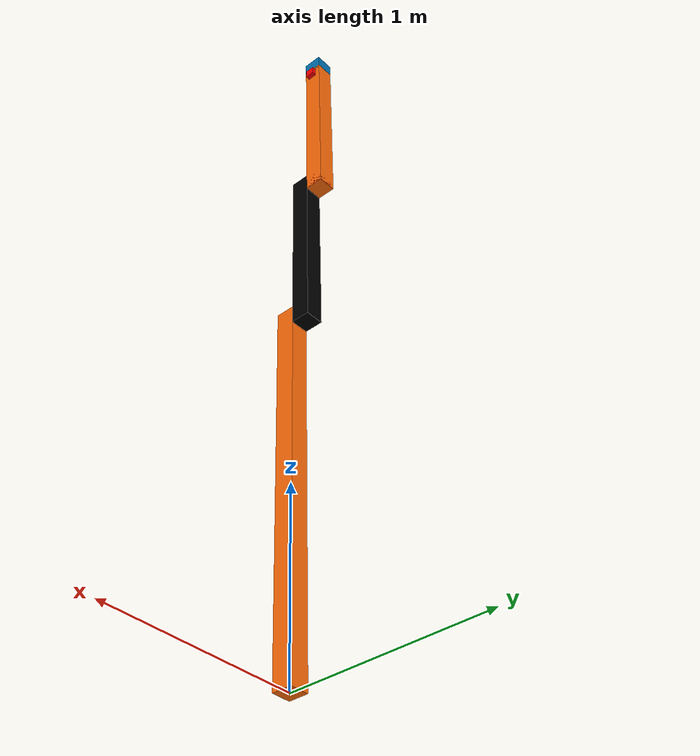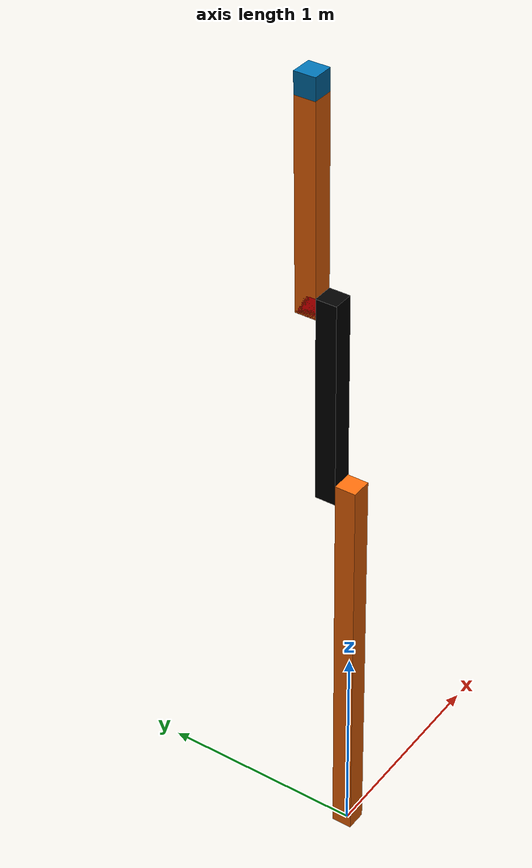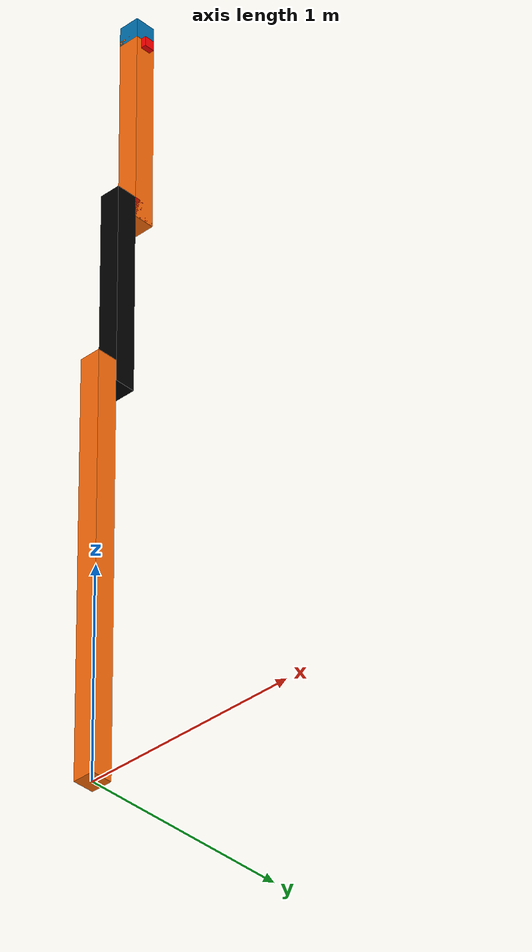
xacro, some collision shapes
<?xml version="1.0"?>
<!-- Revolute-Revolute Manipulator -->
<robot name="rrbot"
  xmlns:xacro="http://www.ros.org/wiki/xacro">

  <!-- Constants for robot dimensions -->
  <xacro:property name="PI" value="3.1415926535897931"/>
  <xacro:property name="mass" value="1" />
  <!-- arbitrary value for mass -->
  <xacro:property name="width" value="0.1" />
  <!-- Square dimensions (widthxwidth) of beams -->
  <xacro:property name="height1" value="2" />
  <!-- Link 1 -->
  <xacro:property name="height2" value="1" />
  <!-- Link 2 -->
  <xacro:property name="height3" value="1" />
  <!-- Link 3 -->
  <xacro:property name="camera_link" value="0.05" />
  <!-- Size of square 'camera' box -->
  <xacro:property name="axel_offset" value="0.05" />
  <!-- Space btw top of beam and the each joint -->

  <!-- Import all Gazebo-customization elements, including Gazebo colors -->
  <xacro:include filename="$(find rrbot_description)/urdf/rrbot.gazebo" />
  <!-- Import Rviz colors -->
  <xacro:include filename="$(find rrbot_description)/urdf/materials.xacro" />

  <!-- Used for fixing robot to Gazebo 'base_link' -->
  <link name="world"/>

  <joint name="fixed" type="fixed">
    <parent link="world"/>
    <child link="link1"/>
  </joint>

  <!-- Base Link -->
  <link name="link1">
    <collision>
      <origin xyz="0 0 ${height1/2}" rpy="0 0 0"/>
      <geometry>
        <box size="${width} ${width} ${height1}"/>
      </geometry>
    </collision>

    <visual>
      <origin xyz="0 0 ${height1/2}" rpy="0 0 0"/>
      <geometry>
        <box size="${width} ${width} ${height1}"/>
      </geometry>
      <material name="orange"/>
    </visual>

    <inertial>
      <origin xyz="0 0 ${height1/2}" rpy="0 0 0"/>
      <mass value="${mass}"/>
      <inertia ixx="${mass / 12.0 * (width*width + height1*height1)}" ixy="0.0" ixz="0.0" iyy="${mass / 12.0 * (height1*height1 + width*width)}" iyz="0.0" izz="${mass / 12.0 * (width*width + width*width)}"/>
    </inertial>
  </link>

  <joint name="joint1" type="continuous">
    <parent link="link1"/>
    <child link="link2"/>
    <origin xyz="0 ${width} ${height1 - axel_offset}" rpy="0 0 0"/>
    <axis xyz="0 1 0"/>
    <dynamics damping="0.7"/>
  </joint>

  <!-- Middle Link -->
  <link name="link2">
    <collision>
      <origin xyz="0 0 ${height2/2 - axel_offset}" rpy="0 0 0"/>
      <geometry>
        <box size="${width} ${width} ${height2}"/>
      </geometry>
    </collision>

    <visual>
      <origin xyz="0 0 ${height2/2 - axel_offset}" rpy="0 0 0"/>
      <geometry>
        <box size="${width} ${width} ${height2}"/>
      </geometry>
      <material name="black"/>
    </visual>

    <inertial>
      <origin xyz="0 0 ${height2/2 - axel_offset}" rpy="0 0 0"/>
      <mass value="${mass}"/>
      <inertia ixx="${mass / 12.0 * (width*width + height2*height2)}" ixy="0.0" ixz="0.0" iyy="${mass / 12.0 * (height2*height2 + width*width)}" iyz="0.0" izz="${mass / 12.0 * (width*width + width*width)}"/>
    </inertial>
  </link>

  <joint name="joint2" type="continuous">
    <parent link="link2"/>
    <child link="link3"/>
    <origin xyz="0 ${width} ${height2 - axel_offset*2}" rpy="0 0 0"/>
    <axis xyz="0 1 0"/>
    <dynamics damping="0.7"/>
  </joint>

  <!-- Top Link -->
  <link name="link3">
    <collision>
      <origin xyz="0 0 ${height3/2 - axel_offset}" rpy="0 0 0"/>
      <geometry>
        <box size="${width} ${width} ${height3}"/>
      </geometry>
    </collision>

    <visual>
      <origin xyz="0 0 ${height3/2 - axel_offset}" rpy="0 0 0"/>
      <geometry>
        <box size="${width} ${width} ${height3}"/>
      </geometry>
      <material name="orange"/>
    </visual>

    <inertial>
      <origin xyz="0 0 ${height3/2 - axel_offset}" rpy="0 0 0"/>
      <mass value="${mass}"/>
      <inertia ixx="${mass / 12.0 * (width*width + height3*height3)}" ixy="0.0" ixz="0.0" iyy="${mass / 12.0 * (height3*height3 + width*width)}" iyz="0.0" izz="${mass / 12.0 * (width*width + width*width)}"/>
    </inertial>
  </link>

  <joint name="hokuyo_joint" type="fixed">
    <axis xyz="0 1 0" />
    <origin xyz="0 0 ${height3 - axel_offset/2}" rpy="0 0 0"/>
    <parent link="link3"/>
    <child link="hokuyo_link"/>
  </joint>

  <!-- Hokuyo Laser -->
  <link name="hokuyo_link">
    <collision>
      <origin xyz="0 0 0" rpy="0 0 0"/>
      <geometry>
        <box size="0.1 0.1 0.1"/>
      </geometry>
    </collision>

    <visual>
      <origin xyz="0 0 0" rpy="0 0 0"/>
      <geometry>
        <mesh filename="file://meshes/hokuyo.dae"/>
      </geometry>
    </visual>

    <inertial>
      <mass value="1e-5" />
      <origin xyz="0 0 0" rpy="0 0 0"/>
      <inertia ixx="1e-6" ixy="0" ixz="0" iyy="1e-6" iyz="0" izz="1e-6" />
    </inertial>
  </link>

  <link name="imu_link">
    <collision>
      <origin xyz="0 0 0" rpy="0 0 0"/>
      <geometry>
        <box size="0.1 0.1 0.1"/>
      </geometry>
    </collision>

    <visual>
      <origin xyz="0 0 0" rpy="0 0 0"/>
      <geometry>
        <box size="0.1 0.1 0.1"/>
      </geometry>
      <material name="red"/>
    </visual>

    <inertial>
      <mass value="1e-5" />
      <origin xyz="0 0 0" rpy="0 0 0"/>
      <inertia ixx="1e-6" ixy="0" ixz="0" iyy="1e-6" iyz="0" izz="1e-6" />
    </inertial>
  </link>

  <joint name="imu_link_join" type="fixed">
    <parent link="link3"/>
    <child link="imu_link"/>
  </joint>

  <joint name="camera_joint" type="fixed">
    <axis xyz="0 1 0" />
    <origin xyz="${camera_link} 0 ${height3 - axel_offset*2}" rpy="0 0 0"/>
    <parent link="link3"/>
    <child link="camera_link"/>
  </joint>

  <!-- Camera -->
  <link name="camera_link">
    <collision>
      <origin xyz="0 0 0" rpy="0 0 0"/>
      <geometry>
        <box size="${camera_link} ${camera_link} ${camera_link}"/>
      </geometry>
    </collision>

    <visual>
      <origin xyz="0 0 0" rpy="0 0 0"/>
      <geometry>
        <box size="${camera_link} ${camera_link} ${camera_link}"/>
      </geometry>
      <material name="red"/>
    </visual>

    <inertial>
      <mass value="1e-5" />
      <origin xyz="0 0 0" rpy="0 0 0"/>
      <inertia ixx="1e-6" ixy="0" ixz="0" iyy="1e-6" iyz="0" izz="1e-6" />
    </inertial>
  </link>

  <!-- generate an optical frame http://www.ros.org/reps/rep-0103.html#suffix-frames
      so that ros and opencv can operate on the camera frame correctly -->
  <joint name="camera_optical_joint" type="fixed">
    <!-- these values have to be these values otherwise the gazebo camera image
        won't be aligned properly with the frame it is supposedly originating from -->
    <origin xyz="0 0 0" rpy="${-pi/2} 0 ${-pi/2}"/>
    <parent link="camera_link"/>
    <child link="camera_link_optical"/>
  </joint>

  <link name="camera_link_optical">
  </link>

  <!-- ros2 control specific -->
  <ros2_control name="GazeboSystem" type="system">
    <hardware>
      <plugin>gazebo_ros2_control/GazeboSystem</plugin>
    </hardware>
    <joint name="joint1">
      <command_interface name="position"/>
      <state_interface name="position"/>
    </joint>
    <joint name="joint2">
      <command_interface name="position"/>
      <state_interface name="position"/>
    </joint>
  </ros2_control>

  <gazebo>
    <plugin name="gazebo_ros2_control" filename="libgazebo_ros2_control.so">
      <parameters>$(find rrbot_control)/config/controller_configuration.yaml</parameters>
    </plugin>
  </gazebo>
</robot>

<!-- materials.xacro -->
<robot name=""
    xmlns:xacro="http://www.ros.org/wiki/xacro">
    <material name="black">
        <color rgba="0.0 0.0 0.0 1.0"/>
    </material>

    <material name="blue">
        <color rgba="0.0 0.0 0.8 1.0"/>
    </material>

    <material name="green">
        <color rgba="0.0 0.8 0.0 1.0"/>
    </material>

    <material name="grey">
        <color rgba="0.2 0.2 0.2 1.0"/>
    </material>

    <material name="orange">
        <color rgba="${255/255} ${108/255} ${10/255} 1.0"/>
    </material>
    <material name="white">
        <color rgba="${255/255} ${255/255} ${255/255} 1.0"/>
      </material>
      <material name="red">
        <color rgba="${255/255} ${0/255} ${0/255} 1.0"/>
      </material>
</robot>
